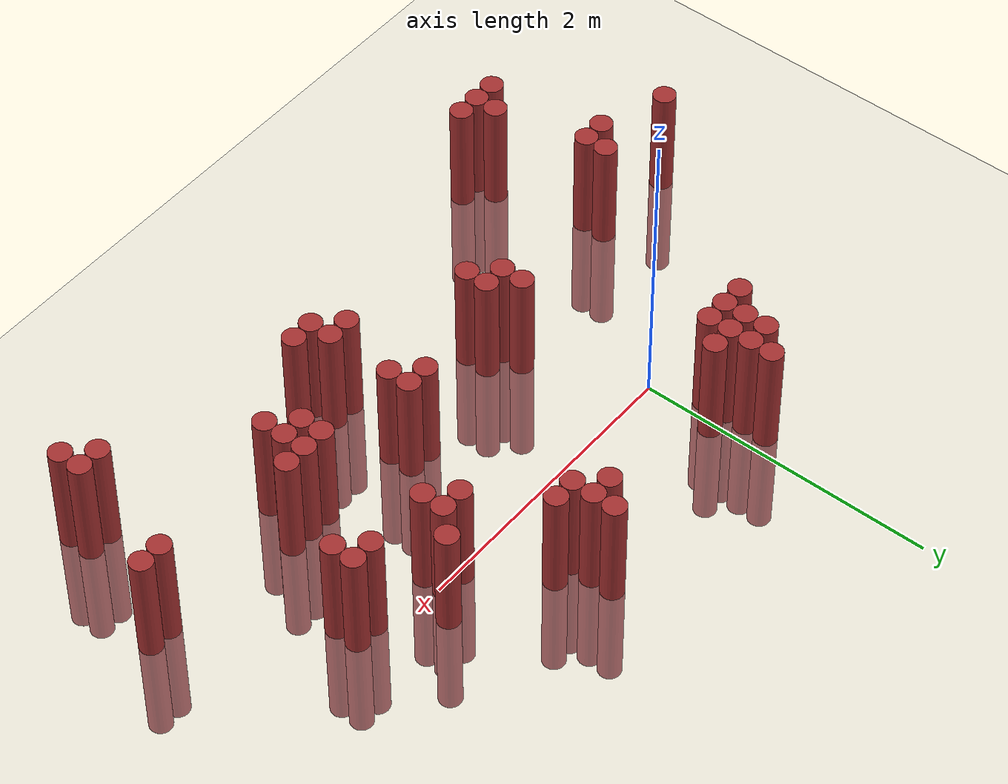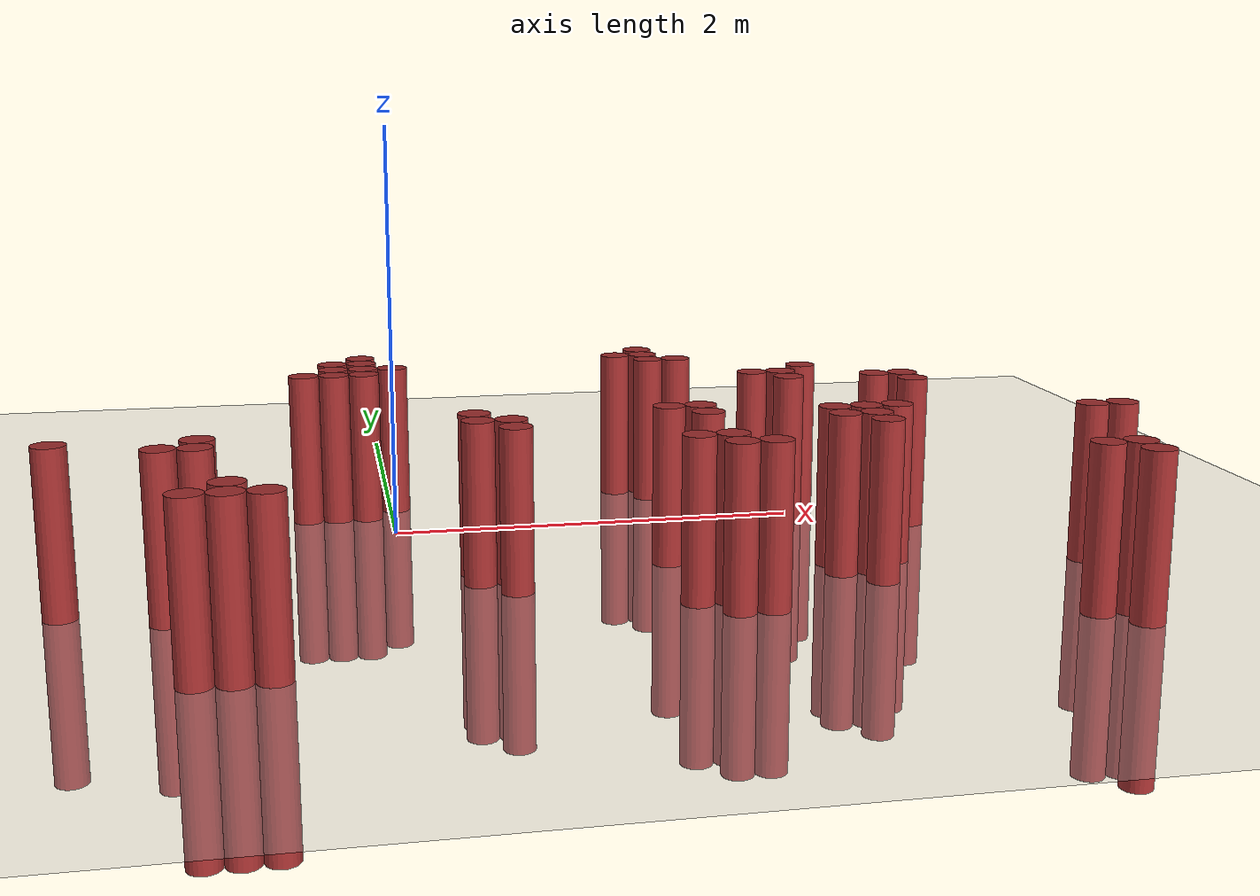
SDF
<sdf version="1.6">
 <world name="default">
  <model name="ground_plane">
   <static>1</static>
   <link name="link">
    <collision name="collision">
     <geometry><plane><normal>0 0 1</normal><size>100 100</size></plane></geometry>
     <surface><friction><ode><mu>100</mu><mu2>50</mu2></ode></friction></surface>
    </collision>
    <visual name="visual">
     <cast_shadows>0</cast_shadows>
     <geometry><plane><normal>0 0 1</normal><size>100 100</size></plane></geometry>
     <material>
      <script><uri>file://media/materials/scripts/gazebo.material</uri><name>Gazebo/Grey</name></script>
     </material>
    </visual>
   </link>
  </model>
  <model name="unit_cylinder_310">
   <static>1</static>
   <pose>-1.475000 -1.025000 0.000000 0.000000 0.000000 0.000000</pose>
   <link name="link">
    <inertial>
     <mass>1</mass>
     <inertia><ixx>0.145833</ixx><ixy>0</ixy><ixz>0</ixz><iyy>0.145833</iyy><iyz>0</iyz><izz>0.125</izz></inertia>
    </inertial>
    <collision name="collision">
     <geometry><cylinder><radius>0.075000</radius><length>1.5</length></cylinder></geometry>
    </collision>
    <visual name="visual">
     <geometry><cylinder><radius>0.075000</radius><length>1.5</length></cylinder></geometry>
     <material>
      <ambient>0.648000 0.192000 0.192000 1</ambient>
      <diffuse>0.648000 0.192000 0.192000 1</diffuse>
     </material>
     <material>
      <script><name>Gazebo/Grey</name><uri>file://media/materials/scripts/gazebo.material</uri></script>
     </material>
    </visual>
   </link>
  </model>
  <model name="unit_cylinder_322">
   <static>1</static>
   <pose>-1.025000 -1.175000 0.000000 0.000000 0.000000 0.000000</pose>
   <link name="link">
    <inertial>
     <mass>1</mass>
     <inertia><ixx>0.145833</ixx><ixy>0</ixy><ixz>0</ixz><iyy>0.145833</iyy><iyz>0</iyz><izz>0.125</izz></inertia>
    </inertial>
    <collision name="collision">
     <geometry><cylinder><radius>0.075000</radius><length>1.5</length></cylinder></geometry>
    </collision>
    <visual name="visual">
     <geometry><cylinder><radius>0.075000</radius><length>1.5</length></cylinder></geometry>
     <material>
      <ambient>0.648000 0.192000 0.192000 1</ambient>
      <diffuse>0.648000 0.192000 0.192000 1</diffuse>
     </material>
     <material>
      <script><name>Gazebo/Grey</name><uri>file://media/materials/scripts/gazebo.material</uri></script>
     </material>
    </visual>
   </link>
  </model>
  <model name="unit_cylinder_325">
   <static>1</static>
   <pose>-0.875000 -1.925000 0.000000 0.000000 0.000000 0.000000</pose>
   <link name="link">
    <inertial>
     <mass>1</mass>
     <inertia><ixx>0.145833</ixx><ixy>0</ixy><ixz>0</ixz><iyy>0.145833</iyy><iyz>0</iyz><izz>0.125</izz></inertia>
    </inertial>
    <collision name="collision">
     <geometry><cylinder><radius>0.075000</radius><length>1.5</length></cylinder></geometry>
    </collision>
    <visual name="visual">
     <geometry><cylinder><radius>0.075000</radius><length>1.5</length></cylinder></geometry>
     <material>
      <ambient>0.648000 0.192000 0.192000 1</ambient>
      <diffuse>0.648000 0.192000 0.192000 1</diffuse>
     </material>
     <material>
      <script><name>Gazebo/Grey</name><uri>file://media/materials/scripts/gazebo.material</uri></script>
     </material>
    </visual>
   </link>
  </model>
  <model name="unit_cylinder_326">
   <static>1</static>
   <pose>-0.875000 -1.175000 0.000000 0.000000 0.000000 0.000000</pose>
   <link name="link">
    <inertial>
     <mass>1</mass>
     <inertia><ixx>0.145833</ixx><ixy>0</ixy><ixz>0</ixz><iyy>0.145833</iyy><iyz>0</iyz><izz>0.125</izz></inertia>
    </inertial>
    <collision name="collision">
     <geometry><cylinder><radius>0.075000</radius><length>1.5</length></cylinder></geometry>
    </collision>
    <visual name="visual">
     <geometry><cylinder><radius>0.075000</radius><length>1.5</length></cylinder></geometry>
     <material>
      <ambient>0.648000 0.192000 0.192000 1</ambient>
      <diffuse>0.648000 0.192000 0.192000 1</diffuse>
     </material>
     <material>
      <script><name>Gazebo/Grey</name><uri>file://media/materials/scripts/gazebo.material</uri></script>
     </material>
    </visual>
   </link>
  </model>
  <model name="unit_cylinder_327">
   <static>1</static>
   <pose>-0.875000 -1.025000 0.000000 0.000000 0.000000 0.000000</pose>
   <link name="link">
    <inertial>
     <mass>1</mass>
     <inertia><ixx>0.145833</ixx><ixy>0</ixy><ixz>0</ixz><iyy>0.145833</iyy><iyz>0</iyz><izz>0.125</izz></inertia>
    </inertial>
    <collision name="collision">
     <geometry><cylinder><radius>0.075000</radius><length>1.5</length></cylinder></geometry>
    </collision>
    <visual name="visual">
     <geometry><cylinder><radius>0.075000</radius><length>1.5</length></cylinder></geometry>
     <material>
      <ambient>0.648000 0.192000 0.192000 1</ambient>
      <diffuse>0.648000 0.192000 0.192000 1</diffuse>
     </material>
     <material>
      <script><name>Gazebo/Grey</name><uri>file://media/materials/scripts/gazebo.material</uri></script>
     </material>
    </visual>
   </link>
  </model>
  <model name="unit_cylinder_333">
   <static>1</static>
   <pose>-0.725000 -1.925000 0.000000 0.000000 0.000000 0.000000</pose>
   <link name="link">
    <inertial>
     <mass>1</mass>
     <inertia><ixx>0.145833</ixx><ixy>0</ixy><ixz>0</ixz><iyy>0.145833</iyy><iyz>0</iyz><izz>0.125</izz></inertia>
    </inertial>
    <collision name="collision">
     <geometry><cylinder><radius>0.075000</radius><length>1.5</length></cylinder></geometry>
    </collision>
    <visual name="visual">
     <geometry><cylinder><radius>0.075000</radius><length>1.5</length></cylinder></geometry>
     <material>
      <ambient>0.648000 0.192000 0.192000 1</ambient>
      <diffuse>0.648000 0.192000 0.192000 1</diffuse>
     </material>
     <material>
      <script><name>Gazebo/Grey</name><uri>file://media/materials/scripts/gazebo.material</uri></script>
     </material>
    </visual>
   </link>
  </model>
  <model name="unit_cylinder_334">
   <static>1</static>
   <pose>-0.725000 -1.775000 0.000000 0.000000 0.000000 0.000000</pose>
   <link name="link">
    <inertial>
     <mass>1</mass>
     <inertia><ixx>0.145833</ixx><ixy>0</ixy><ixz>0</ixz><iyy>0.145833</iyy><iyz>0</iyz><izz>0.125</izz></inertia>
    </inertial>
    <collision name="collision">
     <geometry><cylinder><radius>0.075000</radius><length>1.5</length></cylinder></geometry>
    </collision>
    <visual name="visual">
     <geometry><cylinder><radius>0.075000</radius><length>1.5</length></cylinder></geometry>
     <material>
      <ambient>0.648000 0.192000 0.192000 1</ambient>
      <diffuse>0.648000 0.192000 0.192000 1</diffuse>
     </material>
     <material>
      <script><name>Gazebo/Grey</name><uri>file://media/materials/scripts/gazebo.material</uri></script>
     </material>
    </visual>
   </link>
  </model>
  <model name="unit_cylinder_338">
   <static>1</static>
   <pose>-0.575000 -1.925000 0.000000 0.000000 0.000000 0.000000</pose>
   <link name="link">
    <inertial>
     <mass>1</mass>
     <inertia><ixx>0.145833</ixx><ixy>0</ixy><ixz>0</ixz><iyy>0.145833</iyy><iyz>0</iyz><izz>0.125</izz></inertia>
    </inertial>
    <collision name="collision">
     <geometry><cylinder><radius>0.075000</radius><length>1.5</length></cylinder></geometry>
    </collision>
    <visual name="visual">
     <geometry><cylinder><radius>0.075000</radius><length>1.5</length></cylinder></geometry>
     <material>
      <ambient>0.648000 0.192000 0.192000 1</ambient>
      <diffuse>0.648000 0.192000 0.192000 1</diffuse>
     </material>
     <material>
      <script><name>Gazebo/Grey</name><uri>file://media/materials/scripts/gazebo.material</uri></script>
     </material>
    </visual>
   </link>
  </model>
  <model name="unit_cylinder_340">
   <static>1</static>
   <pose>-0.425000 0.325000 0.000000 0.000000 0.000000 0.000000</pose>
   <link name="link">
    <inertial>
     <mass>1</mass>
     <inertia><ixx>0.145833</ixx><ixy>0</ixy><ixz>0</ixz><iyy>0.145833</iyy><iyz>0</iyz><izz>0.125</izz></inertia>
    </inertial>
    <collision name="collision">
     <geometry><cylinder><radius>0.075000</radius><length>1.5</length></cylinder></geometry>
    </collision>
    <visual name="visual">
     <geometry><cylinder><radius>0.075000</radius><length>1.5</length></cylinder></geometry>
     <material>
      <ambient>0.648000 0.192000 0.192000 1</ambient>
      <diffuse>0.648000 0.192000 0.192000 1</diffuse>
     </material>
     <material>
      <script><name>Gazebo/Grey</name><uri>file://media/materials/scripts/gazebo.material</uri></script>
     </material>
    </visual>
   </link>
  </model>
  <model name="unit_cylinder_341">
   <static>1</static>
   <pose>-0.275000 0.325000 0.000000 0.000000 0.000000 0.000000</pose>
   <link name="link">
    <inertial>
     <mass>1</mass>
     <inertia><ixx>0.145833</ixx><ixy>0</ixy><ixz>0</ixz><iyy>0.145833</iyy><iyz>0</iyz><izz>0.125</izz></inertia>
    </inertial>
    <collision name="collision">
     <geometry><cylinder><radius>0.075000</radius><length>1.5</length></cylinder></geometry>
    </collision>
    <visual name="visual">
     <geometry><cylinder><radius>0.075000</radius><length>1.5</length></cylinder></geometry>
     <material>
      <ambient>0.648000 0.192000 0.192000 1</ambient>
      <diffuse>0.648000 0.192000 0.192000 1</diffuse>
     </material>
     <material>
      <script><name>Gazebo/Grey</name><uri>file://media/materials/scripts/gazebo.material</uri></script>
     </material>
    </visual>
   </link>
  </model>
  <model name="unit_cylinder_342">
   <static>1</static>
   <pose>-0.275000 0.475000 0.000000 0.000000 0.000000 0.000000</pose>
   <link name="link">
    <inertial>
     <mass>1</mass>
     <inertia><ixx>0.145833</ixx><ixy>0</ixy><ixz>0</ixz><iyy>0.145833</iyy><iyz>0</iyz><izz>0.125</izz></inertia>
    </inertial>
    <collision name="collision">
     <geometry><cylinder><radius>0.075000</radius><length>1.5</length></cylinder></geometry>
    </collision>
    <visual name="visual">
     <geometry><cylinder><radius>0.075000</radius><length>1.5</length></cylinder></geometry>
     <material>
      <ambient>0.648000 0.192000 0.192000 1</ambient>
      <diffuse>0.648000 0.192000 0.192000 1</diffuse>
     </material>
     <material>
      <script><name>Gazebo/Grey</name><uri>file://media/materials/scripts/gazebo.material</uri></script>
     </material>
    </visual>
   </link>
  </model>
  <model name="unit_cylinder_343">
   <static>1</static>
   <pose>-0.275000 0.625000 0.000000 0.000000 0.000000 0.000000</pose>
   <link name="link">
    <inertial>
     <mass>1</mass>
     <inertia><ixx>0.145833</ixx><ixy>0</ixy><ixz>0</ixz><iyy>0.145833</iyy><iyz>0</iyz><izz>0.125</izz></inertia>
    </inertial>
    <collision name="collision">
     <geometry><cylinder><radius>0.075000</radius><length>1.5</length></cylinder></geometry>
    </collision>
    <visual name="visual">
     <geometry><cylinder><radius>0.075000</radius><length>1.5</length></cylinder></geometry>
     <material>
      <ambient>0.648000 0.192000 0.192000 1</ambient>
      <diffuse>0.648000 0.192000 0.192000 1</diffuse>
     </material>
     <material>
      <script><name>Gazebo/Grey</name><uri>file://media/materials/scripts/gazebo.material</uri></script>
     </material>
    </visual>
   </link>
  </model>
  <model name="unit_cylinder_344">
   <static>1</static>
   <pose>-0.125000 0.325000 0.000000 0.000000 0.000000 0.000000</pose>
   <link name="link">
    <inertial>
     <mass>1</mass>
     <inertia><ixx>0.145833</ixx><ixy>0</ixy><ixz>0</ixz><iyy>0.145833</iyy><iyz>0</iyz><izz>0.125</izz></inertia>
    </inertial>
    <collision name="collision">
     <geometry><cylinder><radius>0.075000</radius><length>1.5</length></cylinder></geometry>
    </collision>
    <visual name="visual">
     <geometry><cylinder><radius>0.075000</radius><length>1.5</length></cylinder></geometry>
     <material>
      <ambient>0.648000 0.192000 0.192000 1</ambient>
      <diffuse>0.648000 0.192000 0.192000 1</diffuse>
     </material>
     <material>
      <script><name>Gazebo/Grey</name><uri>file://media/materials/scripts/gazebo.material</uri></script>
     </material>
    </visual>
   </link>
  </model>
  <model name="unit_cylinder_345">
   <static>1</static>
   <pose>-0.125000 0.475000 0.000000 0.000000 0.000000 0.000000</pose>
   <link name="link">
    <inertial>
     <mass>1</mass>
     <inertia><ixx>0.145833</ixx><ixy>0</ixy><ixz>0</ixz><iyy>0.145833</iyy><iyz>0</iyz><izz>0.125</izz></inertia>
    </inertial>
    <collision name="collision">
     <geometry><cylinder><radius>0.075000</radius><length>1.5</length></cylinder></geometry>
    </collision>
    <visual name="visual">
     <geometry><cylinder><radius>0.075000</radius><length>1.5</length></cylinder></geometry>
     <material>
      <ambient>0.648000 0.192000 0.192000 1</ambient>
      <diffuse>0.648000 0.192000 0.192000 1</diffuse>
     </material>
     <material>
      <script><name>Gazebo/Grey</name><uri>file://media/materials/scripts/gazebo.material</uri></script>
     </material>
    </visual>
   </link>
  </model>
  <model name="unit_cylinder_346">
   <static>1</static>
   <pose>-0.125000 0.625000 0.000000 0.000000 0.000000 0.000000</pose>
   <link name="link">
    <inertial>
     <mass>1</mass>
     <inertia><ixx>0.145833</ixx><ixy>0</ixy><ixz>0</ixz><iyy>0.145833</iyy><iyz>0</iyz><izz>0.125</izz></inertia>
    </inertial>
    <collision name="collision">
     <geometry><cylinder><radius>0.075000</radius><length>1.5</length></cylinder></geometry>
    </collision>
    <visual name="visual">
     <geometry><cylinder><radius>0.075000</radius><length>1.5</length></cylinder></geometry>
     <material>
      <ambient>0.648000 0.192000 0.192000 1</ambient>
      <diffuse>0.648000 0.192000 0.192000 1</diffuse>
     </material>
     <material>
      <script><name>Gazebo/Grey</name><uri>file://media/materials/scripts/gazebo.material</uri></script>
     </material>
    </visual>
   </link>
  </model>
  <model name="unit_cylinder_347">
   <static>1</static>
   <pose>-0.125000 0.775000 0.000000 0.000000 0.000000 0.000000</pose>
   <link name="link">
    <inertial>
     <mass>1</mass>
     <inertia><ixx>0.145833</ixx><ixy>0</ixy><ixz>0</ixz><iyy>0.145833</iyy><iyz>0</iyz><izz>0.125</izz></inertia>
    </inertial>
    <collision name="collision">
     <geometry><cylinder><radius>0.075000</radius><length>1.5</length></cylinder></geometry>
    </collision>
    <visual name="visual">
     <geometry><cylinder><radius>0.075000</radius><length>1.5</length></cylinder></geometry>
     <material>
      <ambient>0.648000 0.192000 0.192000 1</ambient>
      <diffuse>0.648000 0.192000 0.192000 1</diffuse>
     </material>
     <material>
      <script><name>Gazebo/Grey</name><uri>file://media/materials/scripts/gazebo.material</uri></script>
     </material>
    </visual>
   </link>
  </model>
  <model name="unit_cylinder_350">
   <static>1</static>
   <pose>0.025000 0.475000 0.000000 0.000000 0.000000 0.000000</pose>
   <link name="link">
    <inertial>
     <mass>1</mass>
     <inertia><ixx>0.145833</ixx><ixy>0</ixy><ixz>0</ixz><iyy>0.145833</iyy><iyz>0</iyz><izz>0.125</izz></inertia>
    </inertial>
    <collision name="collision">
     <geometry><cylinder><radius>0.075000</radius><length>1.5</length></cylinder></geometry>
    </collision>
    <visual name="visual">
     <geometry><cylinder><radius>0.075000</radius><length>1.5</length></cylinder></geometry>
     <material>
      <ambient>0.648000 0.192000 0.192000 1</ambient>
      <diffuse>0.648000 0.192000 0.192000 1</diffuse>
     </material>
     <material>
      <script><name>Gazebo/Grey</name><uri>file://media/materials/scripts/gazebo.material</uri></script>
     </material>
    </visual>
   </link>
  </model>
  <model name="unit_cylinder_356">
   <static>1</static>
   <pose>0.325000 -0.875000 0.000000 0.000000 0.000000 0.000000</pose>
   <link name="link">
    <inertial>
     <mass>1</mass>
     <inertia><ixx>0.145833</ixx><ixy>0</ixy><ixz>0</ixz><iyy>0.145833</iyy><iyz>0</iyz><izz>0.125</izz></inertia>
    </inertial>
    <collision name="collision">
     <geometry><cylinder><radius>0.075000</radius><length>1.5</length></cylinder></geometry>
    </collision>
    <visual name="visual">
     <geometry><cylinder><radius>0.075000</radius><length>1.5</length></cylinder></geometry>
     <material>
      <ambient>0.648000 0.192000 0.192000 1</ambient>
      <diffuse>0.648000 0.192000 0.192000 1</diffuse>
     </material>
     <material>
      <script><name>Gazebo/Grey</name><uri>file://media/materials/scripts/gazebo.material</uri></script>
     </material>
    </visual>
   </link>
  </model>
  <model name="unit_cylinder_357">
   <static>1</static>
   <pose>0.325000 -0.725000 0.000000 0.000000 0.000000 0.000000</pose>
   <link name="link">
    <inertial>
     <mass>1</mass>
     <inertia><ixx>0.145833</ixx><ixy>0</ixy><ixz>0</ixz><iyy>0.145833</iyy><iyz>0</iyz><izz>0.125</izz></inertia>
    </inertial>
    <collision name="collision">
     <geometry><cylinder><radius>0.075000</radius><length>1.5</length></cylinder></geometry>
    </collision>
    <visual name="visual">
     <geometry><cylinder><radius>0.075000</radius><length>1.5</length></cylinder></geometry>
     <material>
      <ambient>0.648000 0.192000 0.192000 1</ambient>
      <diffuse>0.648000 0.192000 0.192000 1</diffuse>
     </material>
     <material>
      <script><name>Gazebo/Grey</name><uri>file://media/materials/scripts/gazebo.material</uri></script>
     </material>
    </visual>
   </link>
  </model>
  <model name="unit_cylinder_362">
   <static>1</static>
   <pose>0.475000 -1.025000 0.000000 0.000000 0.000000 0.000000</pose>
   <link name="link">
    <inertial>
     <mass>1</mass>
     <inertia><ixx>0.145833</ixx><ixy>0</ixy><ixz>0</ixz><iyy>0.145833</iyy><iyz>0</iyz><izz>0.125</izz></inertia>
    </inertial>
    <collision name="collision">
     <geometry><cylinder><radius>0.075000</radius><length>1.5</length></cylinder></geometry>
    </collision>
    <visual name="visual">
     <geometry><cylinder><radius>0.075000</radius><length>1.5</length></cylinder></geometry>
     <material>
      <ambient>0.648000 0.192000 0.192000 1</ambient>
      <diffuse>0.648000 0.192000 0.192000 1</diffuse>
     </material>
     <material>
      <script><name>Gazebo/Grey</name><uri>file://media/materials/scripts/gazebo.material</uri></script>
     </material>
    </visual>
   </link>
  </model>
  <model name="unit_cylinder_363">
   <static>1</static>
   <pose>0.475000 -0.875000 0.000000 0.000000 0.000000 0.000000</pose>
   <link name="link">
    <inertial>
     <mass>1</mass>
     <inertia><ixx>0.145833</ixx><ixy>0</ixy><ixz>0</ixz><iyy>0.145833</iyy><iyz>0</iyz><izz>0.125</izz></inertia>
    </inertial>
    <collision name="collision">
     <geometry><cylinder><radius>0.075000</radius><length>1.5</length></cylinder></geometry>
    </collision>
    <visual name="visual">
     <geometry><cylinder><radius>0.075000</radius><length>1.5</length></cylinder></geometry>
     <material>
      <ambient>0.648000 0.192000 0.192000 1</ambient>
      <diffuse>0.648000 0.192000 0.192000 1</diffuse>
     </material>
     <material>
      <script><name>Gazebo/Grey</name><uri>file://media/materials/scripts/gazebo.material</uri></script>
     </material>
    </visual>
   </link>
  </model>
  <model name="unit_cylinder_367">
   <static>1</static>
   <pose>1.225000 -1.325000 0.000000 0.000000 0.000000 0.000000</pose>
   <link name="link">
    <inertial>
     <mass>1</mass>
     <inertia><ixx>0.145833</ixx><ixy>0</ixy><ixz>0</ixz><iyy>0.145833</iyy><iyz>0</iyz><izz>0.125</izz></inertia>
    </inertial>
    <collision name="collision">
     <geometry><cylinder><radius>0.075000</radius><length>1.5</length></cylinder></geometry>
    </collision>
    <visual name="visual">
     <geometry><cylinder><radius>0.075000</radius><length>1.5</length></cylinder></geometry>
     <material>
      <ambient>0.648000 0.192000 0.192000 1</ambient>
      <diffuse>0.648000 0.192000 0.192000 1</diffuse>
     </material>
     <material>
      <script><name>Gazebo/Grey</name><uri>file://media/materials/scripts/gazebo.material</uri></script>
     </material>
    </visual>
   </link>
  </model>
  <model name="unit_cylinder_368">
   <static>1</static>
   <pose>1.225000 -0.725000 0.000000 0.000000 0.000000 0.000000</pose>
   <link name="link">
    <inertial>
     <mass>1</mass>
     <inertia><ixx>0.145833</ixx><ixy>0</ixy><ixz>0</ixz><iyy>0.145833</iyy><iyz>0</iyz><izz>0.125</izz></inertia>
    </inertial>
    <collision name="collision">
     <geometry><cylinder><radius>0.075000</radius><length>1.5</length></cylinder></geometry>
    </collision>
    <visual name="visual">
     <geometry><cylinder><radius>0.075000</radius><length>1.5</length></cylinder></geometry>
     <material>
      <ambient>0.648000 0.192000 0.192000 1</ambient>
      <diffuse>0.648000 0.192000 0.192000 1</diffuse>
     </material>
     <material>
      <script><name>Gazebo/Grey</name><uri>file://media/materials/scripts/gazebo.material</uri></script>
     </material>
    </visual>
   </link>
  </model>
  <model name="unit_cylinder_369">
   <static>1</static>
   <pose>1.225000 0.625000 0.000000 0.000000 0.000000 0.000000</pose>
   <link name="link">
    <inertial>
     <mass>1</mass>
     <inertia><ixx>0.145833</ixx><ixy>0</ixy><ixz>0</ixz><iyy>0.145833</iyy><iyz>0</iyz><izz>0.125</izz></inertia>
    </inertial>
    <collision name="collision">
     <geometry><cylinder><radius>0.075000</radius><length>1.5</length></cylinder></geometry>
    </collision>
    <visual name="visual">
     <geometry><cylinder><radius>0.075000</radius><length>1.5</length></cylinder></geometry>
     <material>
      <ambient>0.648000 0.192000 0.192000 1</ambient>
      <diffuse>0.648000 0.192000 0.192000 1</diffuse>
     </material>
     <material>
      <script><name>Gazebo/Grey</name><uri>file://media/materials/scripts/gazebo.material</uri></script>
     </material>
    </visual>
   </link>
  </model>
  <model name="unit_cylinder_370">
   <static>1</static>
   <pose>1.375000 -1.475000 0.000000 0.000000 0.000000 0.000000</pose>
   <link name="link">
    <inertial>
     <mass>1</mass>
     <inertia><ixx>0.145833</ixx><ixy>0</ixy><ixz>0</ixz><iyy>0.145833</iyy><iyz>0</iyz><izz>0.125</izz></inertia>
    </inertial>
    <collision name="collision">
     <geometry><cylinder><radius>0.075000</radius><length>1.5</length></cylinder></geometry>
    </collision>
    <visual name="visual">
     <geometry><cylinder><radius>0.075000</radius><length>1.5</length></cylinder></geometry>
     <material>
      <ambient>0.648000 0.192000 0.192000 1</ambient>
      <diffuse>0.648000 0.192000 0.192000 1</diffuse>
     </material>
     <material>
      <script><name>Gazebo/Grey</name><uri>file://media/materials/scripts/gazebo.material</uri></script>
     </material>
    </visual>
   </link>
  </model>
  <model name="unit_cylinder_371">
   <static>1</static>
   <pose>1.375000 -1.325000 0.000000 0.000000 0.000000 0.000000</pose>
   <link name="link">
    <inertial>
     <mass>1</mass>
     <inertia><ixx>0.145833</ixx><ixy>0</ixy><ixz>0</ixz><iyy>0.145833</iyy><iyz>0</iyz><izz>0.125</izz></inertia>
    </inertial>
    <collision name="collision">
     <geometry><cylinder><radius>0.075000</radius><length>1.5</length></cylinder></geometry>
    </collision>
    <visual name="visual">
     <geometry><cylinder><radius>0.075000</radius><length>1.5</length></cylinder></geometry>
     <material>
      <ambient>0.648000 0.192000 0.192000 1</ambient>
      <diffuse>0.648000 0.192000 0.192000 1</diffuse>
     </material>
     <material>
      <script><name>Gazebo/Grey</name><uri>file://media/materials/scripts/gazebo.material</uri></script>
     </material>
    </visual>
   </link>
  </model>
  <model name="unit_cylinder_372">
   <static>1</static>
   <pose>1.375000 -0.875000 0.000000 0.000000 0.000000 0.000000</pose>
   <link name="link">
    <inertial>
     <mass>1</mass>
     <inertia><ixx>0.145833</ixx><ixy>0</ixy><ixz>0</ixz><iyy>0.145833</iyy><iyz>0</iyz><izz>0.125</izz></inertia>
    </inertial>
    <collision name="collision">
     <geometry><cylinder><radius>0.075000</radius><length>1.5</length></cylinder></geometry>
    </collision>
    <visual name="visual">
     <geometry><cylinder><radius>0.075000</radius><length>1.5</length></cylinder></geometry>
     <material>
      <ambient>0.648000 0.192000 0.192000 1</ambient>
      <diffuse>0.648000 0.192000 0.192000 1</diffuse>
     </material>
     <material>
      <script><name>Gazebo/Grey</name><uri>file://media/materials/scripts/gazebo.material</uri></script>
     </material>
    </visual>
   </link>
  </model>
  <model name="unit_cylinder_373">
   <static>1</static>
   <pose>1.375000 -0.725000 0.000000 0.000000 0.000000 0.000000</pose>
   <link name="link">
    <inertial>
     <mass>1</mass>
     <inertia><ixx>0.145833</ixx><ixy>0</ixy><ixz>0</ixz><iyy>0.145833</iyy><iyz>0</iyz><izz>0.125</izz></inertia>
    </inertial>
    <collision name="collision">
     <geometry><cylinder><radius>0.075000</radius><length>1.5</length></cylinder></geometry>
    </collision>
    <visual name="visual">
     <geometry><cylinder><radius>0.075000</radius><length>1.5</length></cylinder></geometry>
     <material>
      <ambient>0.648000 0.192000 0.192000 1</ambient>
      <diffuse>0.648000 0.192000 0.192000 1</diffuse>
     </material>
     <material>
      <script><name>Gazebo/Grey</name><uri>file://media/materials/scripts/gazebo.material</uri></script>
     </material>
    </visual>
   </link>
  </model>
  <model name="unit_cylinder_374">
   <static>1</static>
   <pose>1.375000 0.475000 0.000000 0.000000 0.000000 0.000000</pose>
   <link name="link">
    <inertial>
     <mass>1</mass>
     <inertia><ixx>0.145833</ixx><ixy>0</ixy><ixz>0</ixz><iyy>0.145833</iyy><iyz>0</iyz><izz>0.125</izz></inertia>
    </inertial>
    <collision name="collision">
     <geometry><cylinder><radius>0.075000</radius><length>1.5</length></cylinder></geometry>
    </collision>
    <visual name="visual">
     <geometry><cylinder><radius>0.075000</radius><length>1.5</length></cylinder></geometry>
     <material>
      <ambient>0.648000 0.192000 0.192000 1</ambient>
      <diffuse>0.648000 0.192000 0.192000 1</diffuse>
     </material>
     <material>
      <script><name>Gazebo/Grey</name><uri>file://media/materials/scripts/gazebo.material</uri></script>
     </material>
    </visual>
   </link>
  </model>
  <model name="unit_cylinder_375">
   <static>1</static>
   <pose>1.375000 0.625000 0.000000 0.000000 0.000000 0.000000</pose>
   <link name="link">
    <inertial>
     <mass>1</mass>
     <inertia><ixx>0.145833</ixx><ixy>0</ixy><ixz>0</ixz><iyy>0.145833</iyy><iyz>0</iyz><izz>0.125</izz></inertia>
    </inertial>
    <collision name="collision">
     <geometry><cylinder><radius>0.075000</radius><length>1.5</length></cylinder></geometry>
    </collision>
    <visual name="visual">
     <geometry><cylinder><radius>0.075000</radius><length>1.5</length></cylinder></geometry>
     <material>
      <ambient>0.648000 0.192000 0.192000 1</ambient>
      <diffuse>0.648000 0.192000 0.192000 1</diffuse>
     </material>
     <material>
      <script><name>Gazebo/Grey</name><uri>file://media/materials/scripts/gazebo.material</uri></script>
     </material>
    </visual>
   </link>
  </model>
  <model name="unit_cylinder_376">
   <static>1</static>
   <pose>1.375000 0.775000 0.000000 0.000000 0.000000 0.000000</pose>
   <link name="link">
    <inertial>
     <mass>1</mass>
     <inertia><ixx>0.145833</ixx><ixy>0</ixy><ixz>0</ixz><iyy>0.145833</iyy><iyz>0</iyz><izz>0.125</izz></inertia>
    </inertial>
    <collision name="collision">
     <geometry><cylinder><radius>0.075000</radius><length>1.5</length></cylinder></geometry>
    </collision>
    <visual name="visual">
     <geometry><cylinder><radius>0.075000</radius><length>1.5</length></cylinder></geometry>
     <material>
      <ambient>0.648000 0.192000 0.192000 1</ambient>
      <diffuse>0.648000 0.192000 0.192000 1</diffuse>
     </material>
     <material>
      <script><name>Gazebo/Grey</name><uri>file://media/materials/scripts/gazebo.material</uri></script>
     </material>
    </visual>
   </link>
  </model>
  <model name="unit_cylinder_380">
   <static>1</static>
   <pose>1.525000 -1.475000 0.000000 0.000000 0.000000 0.000000</pose>
   <link name="link">
    <inertial>
     <mass>1</mass>
     <inertia><ixx>0.145833</ixx><ixy>0</ixy><ixz>0</ixz><iyy>0.145833</iyy><iyz>0</iyz><izz>0.125</izz></inertia>
    </inertial>
    <collision name="collision">
     <geometry><cylinder><radius>0.075000</radius><length>1.5</length></cylinder></geometry>
    </collision>
    <visual name="visual">
     <geometry><cylinder><radius>0.075000</radius><length>1.5</length></cylinder></geometry>
     <material>
      <ambient>0.648000 0.192000 0.192000 1</ambient>
      <diffuse>0.648000 0.192000 0.192000 1</diffuse>
     </material>
     <material>
      <script><name>Gazebo/Grey</name><uri>file://media/materials/scripts/gazebo.material</uri></script>
     </material>
    </visual>
   </link>
  </model>
  <model name="unit_cylinder_381">
   <static>1</static>
   <pose>1.525000 0.475000 0.000000 0.000000 0.000000 0.000000</pose>
   <link name="link">
    <inertial>
     <mass>1</mass>
     <inertia><ixx>0.145833</ixx><ixy>0</ixy><ixz>0</ixz><iyy>0.145833</iyy><iyz>0</iyz><izz>0.125</izz></inertia>
    </inertial>
    <collision name="collision">
     <geometry><cylinder><radius>0.075000</radius><length>1.5</length></cylinder></geometry>
    </collision>
    <visual name="visual">
     <geometry><cylinder><radius>0.075000</radius><length>1.5</length></cylinder></geometry>
     <material>
      <ambient>0.648000 0.192000 0.192000 1</ambient>
      <diffuse>0.648000 0.192000 0.192000 1</diffuse>
     </material>
     <material>
      <script><name>Gazebo/Grey</name><uri>file://media/materials/scripts/gazebo.material</uri></script>
     </material>
    </visual>
   </link>
  </model>
  <model name="unit_cylinder_396">
   <static>1</static>
   <pose>1.825000 0.025000 0.000000 0.000000 0.000000 0.000000</pose>
   <link name="link">
    <inertial>
     <mass>1</mass>
     <inertia><ixx>0.145833</ixx><ixy>0</ixy><ixz>0</ixz><iyy>0.145833</iyy><iyz>0</iyz><izz>0.125</izz></inertia>
    </inertial>
    <collision name="collision">
     <geometry><cylinder><radius>0.075000</radius><length>1.5</length></cylinder></geometry>
    </collision>
    <visual name="visual">
     <geometry><cylinder><radius>0.075000</radius><length>1.5</length></cylinder></geometry>
     <material>
      <ambient>0.648000 0.192000 0.192000 1</ambient>
      <diffuse>0.648000 0.192000 0.192000 1</diffuse>
     </material>
     <material>
      <script><name>Gazebo/Grey</name><uri>file://media/materials/scripts/gazebo.material</uri></script>
     </material>
    </visual>
   </link>
  </model>
  <model name="unit_cylinder_404">
   <static>1</static>
   <pose>1.975000 -1.025000 0.000000 0.000000 0.000000 0.000000</pose>
   <link name="link">
    <inertial>
     <mass>1</mass>
     <inertia><ixx>0.145833</ixx><ixy>0</ixy><ixz>0</ixz><iyy>0.145833</iyy><iyz>0</iyz><izz>0.125</izz></inertia>
    </inertial>
    <collision name="collision">
     <geometry><cylinder><radius>0.075000</radius><length>1.5</length></cylinder></geometry>
    </collision>
    <visual name="visual">
     <geometry><cylinder><radius>0.075000</radius><length>1.5</length></cylinder></geometry>
     <material>
      <ambient>0.648000 0.192000 0.192000 1</ambient>
      <diffuse>0.648000 0.192000 0.192000 1</diffuse>
     </material>
     <material>
      <script><name>Gazebo/Grey</name><uri>file://media/materials/scripts/gazebo.material</uri></script>
     </material>
    </visual>
   </link>
  </model>
  <model name="unit_cylinder_405">
   <static>1</static>
   <pose>1.975000 -0.875000 0.000000 0.000000 0.000000 0.000000</pose>
   <link name="link">
    <inertial>
     <mass>1</mass>
     <inertia><ixx>0.145833</ixx><ixy>0</ixy><ixz>0</ixz><iyy>0.145833</iyy><iyz>0</iyz><izz>0.125</izz></inertia>
    </inertial>
    <collision name="collision">
     <geometry><cylinder><radius>0.075000</radius><length>1.5</length></cylinder></geometry>
    </collision>
    <visual name="visual">
     <geometry><cylinder><radius>0.075000</radius><length>1.5</length></cylinder></geometry>
     <material>
      <ambient>0.648000 0.192000 0.192000 1</ambient>
      <diffuse>0.648000 0.192000 0.192000 1</diffuse>
     </material>
     <material>
      <script><name>Gazebo/Grey</name><uri>file://media/materials/scripts/gazebo.material</uri></script>
     </material>
    </visual>
   </link>
  </model>
  <model name="unit_cylinder_406">
   <static>1</static>
   <pose>1.975000 -0.125000 0.000000 0.000000 0.000000 0.000000</pose>
   <link name="link">
    <inertial>
     <mass>1</mass>
     <inertia><ixx>0.145833</ixx><ixy>0</ixy><ixz>0</ixz><iyy>0.145833</iyy><iyz>0</iyz><izz>0.125</izz></inertia>
    </inertial>
    <collision name="collision">
     <geometry><cylinder><radius>0.075000</radius><length>1.5</length></cylinder></geometry>
    </collision>
    <visual name="visual">
     <geometry><cylinder><radius>0.075000</radius><length>1.5</length></cylinder></geometry>
     <material>
      <ambient>0.648000 0.192000 0.192000 1</ambient>
      <diffuse>0.648000 0.192000 0.192000 1</diffuse>
     </material>
     <material>
      <script><name>Gazebo/Grey</name><uri>file://media/materials/scripts/gazebo.material</uri></script>
     </material>
    </visual>
   </link>
  </model>
  <model name="unit_cylinder_407">
   <static>1</static>
   <pose>1.975000 0.025000 0.000000 0.000000 0.000000 0.000000</pose>
   <link name="link">
    <inertial>
     <mass>1</mass>
     <inertia><ixx>0.145833</ixx><ixy>0</ixy><ixz>0</ixz><iyy>0.145833</iyy><iyz>0</iyz><izz>0.125</izz></inertia>
    </inertial>
    <collision name="collision">
     <geometry><cylinder><radius>0.075000</radius><length>1.5</length></cylinder></geometry>
    </collision>
    <visual name="visual">
     <geometry><cylinder><radius>0.075000</radius><length>1.5</length></cylinder></geometry>
     <material>
      <ambient>0.648000 0.192000 0.192000 1</ambient>
      <diffuse>0.648000 0.192000 0.192000 1</diffuse>
     </material>
     <material>
      <script><name>Gazebo/Grey</name><uri>file://media/materials/scripts/gazebo.material</uri></script>
     </material>
    </visual>
   </link>
  </model>
  <model name="unit_cylinder_412">
   <static>1</static>
   <pose>2.125000 -1.175000 0.000000 0.000000 0.000000 0.000000</pose>
   <link name="link">
    <inertial>
     <mass>1</mass>
     <inertia><ixx>0.145833</ixx><ixy>0</ixy><ixz>0</ixz><iyy>0.145833</iyy><iyz>0</iyz><izz>0.125</izz></inertia>
    </inertial>
    <collision name="collision">
     <geometry><cylinder><radius>0.075000</radius><length>1.5</length></cylinder></geometry>
    </collision>
    <visual name="visual">
     <geometry><cylinder><radius>0.075000</radius><length>1.5</length></cylinder></geometry>
     <material>
      <ambient>0.648000 0.192000 0.192000 1</ambient>
      <diffuse>0.648000 0.192000 0.192000 1</diffuse>
     </material>
     <material>
      <script><name>Gazebo/Grey</name><uri>file://media/materials/scripts/gazebo.material</uri></script>
     </material>
    </visual>
   </link>
  </model>
  <model name="unit_cylinder_413">
   <static>1</static>
   <pose>2.125000 -1.025000 0.000000 0.000000 0.000000 0.000000</pose>
   <link name="link">
    <inertial>
     <mass>1</mass>
     <inertia><ixx>0.145833</ixx><ixy>0</ixy><ixz>0</ixz><iyy>0.145833</iyy><iyz>0</iyz><izz>0.125</izz></inertia>
    </inertial>
    <collision name="collision">
     <geometry><cylinder><radius>0.075000</radius><length>1.5</length></cylinder></geometry>
    </collision>
    <visual name="visual">
     <geometry><cylinder><radius>0.075000</radius><length>1.5</length></cylinder></geometry>
     <material>
      <ambient>0.648000 0.192000 0.192000 1</ambient>
      <diffuse>0.648000 0.192000 0.192000 1</diffuse>
     </material>
     <material>
      <script><name>Gazebo/Grey</name><uri>file://media/materials/scripts/gazebo.material</uri></script>
     </material>
    </visual>
   </link>
  </model>
  <model name="unit_cylinder_414">
   <static>1</static>
   <pose>2.125000 -0.875000 0.000000 0.000000 0.000000 0.000000</pose>
   <link name="link">
    <inertial>
     <mass>1</mass>
     <inertia><ixx>0.145833</ixx><ixy>0</ixy><ixz>0</ixz><iyy>0.145833</iyy><iyz>0</iyz><izz>0.125</izz></inertia>
    </inertial>
    <collision name="collision">
     <geometry><cylinder><radius>0.075000</radius><length>1.5</length></cylinder></geometry>
    </collision>
    <visual name="visual">
     <geometry><cylinder><radius>0.075000</radius><length>1.5</length></cylinder></geometry>
     <material>
      <ambient>0.648000 0.192000 0.192000 1</ambient>
      <diffuse>0.648000 0.192000 0.192000 1</diffuse>
     </material>
     <material>
      <script><name>Gazebo/Grey</name><uri>file://media/materials/scripts/gazebo.material</uri></script>
     </material>
    </visual>
   </link>
  </model>
  <model name="unit_cylinder_415">
   <static>1</static>
   <pose>2.125000 0.175000 0.000000 0.000000 0.000000 0.000000</pose>
   <link name="link">
    <inertial>
     <mass>1</mass>
     <inertia><ixx>0.145833</ixx><ixy>0</ixy><ixz>0</ixz><iyy>0.145833</iyy><iyz>0</iyz><izz>0.125</izz></inertia>
    </inertial>
    <collision name="collision">
     <geometry><cylinder><radius>0.075000</radius><length>1.5</length></cylinder></geometry>
    </collision>
    <visual name="visual">
     <geometry><cylinder><radius>0.075000</radius><length>1.5</length></cylinder></geometry>
     <material>
      <ambient>0.648000 0.192000 0.192000 1</ambient>
      <diffuse>0.648000 0.192000 0.192000 1</diffuse>
     </material>
     <material>
      <script><name>Gazebo/Grey</name><uri>file://media/materials/scripts/gazebo.material</uri></script>
     </material>
    </visual>
   </link>
  </model>
  <model name="unit_cylinder_419">
   <static>1</static>
   <pose>2.275000 -0.875000 0.000000 0.000000 0.000000 0.000000</pose>
   <link name="link">
    <inertial>
     <mass>1</mass>
     <inertia><ixx>0.145833</ixx><ixy>0</ixy><ixz>0</ixz><iyy>0.145833</iyy><iyz>0</iyz><izz>0.125</izz></inertia>
    </inertial>
    <collision name="collision">
     <geometry><cylinder><radius>0.075000</radius><length>1.5</length></cylinder></geometry>
    </collision>
    <visual name="visual">
     <geometry><cylinder><radius>0.075000</radius><length>1.5</length></cylinder></geometry>
     <material>
      <ambient>0.648000 0.192000 0.192000 1</ambient>
      <diffuse>0.648000 0.192000 0.192000 1</diffuse>
     </material>
     <material>
      <script><name>Gazebo/Grey</name><uri>file://media/materials/scripts/gazebo.material</uri></script>
     </material>
    </visual>
   </link>
  </model>
  <model name="unit_cylinder_422">
   <static>1</static>
   <pose>2.425000 -0.125000 0.000000 0.000000 0.000000 0.000000</pose>
   <link name="link">
    <inertial>
     <mass>1</mass>
     <inertia><ixx>0.145833</ixx><ixy>0</ixy><ixz>0</ixz><iyy>0.145833</iyy><iyz>0</iyz><izz>0.125</izz></inertia>
    </inertial>
    <collision name="collision">
     <geometry><cylinder><radius>0.075000</radius><length>1.5</length></cylinder></geometry>
    </collision>
    <visual name="visual">
     <geometry><cylinder><radius>0.075000</radius><length>1.5</length></cylinder></geometry>
     <material>
      <ambient>0.648000 0.192000 0.192000 1</ambient>
      <diffuse>0.648000 0.192000 0.192000 1</diffuse>
     </material>
     <material>
      <script><name>Gazebo/Grey</name><uri>file://media/materials/scripts/gazebo.material</uri></script>
     </material>
    </visual>
   </link>
  </model>
  <model name="unit_cylinder_423">
   <static>1</static>
   <pose>2.575000 -0.275000 0.000000 0.000000 0.000000 0.000000</pose>
   <link name="link">
    <inertial>
     <mass>1</mass>
     <inertia><ixx>0.145833</ixx><ixy>0</ixy><ixz>0</ixz><iyy>0.145833</iyy><iyz>0</iyz><izz>0.125</izz></inertia>
    </inertial>
    <collision name="collision">
     <geometry><cylinder><radius>0.075000</radius><length>1.5</length></cylinder></geometry>
    </collision>
    <visual name="visual">
     <geometry><cylinder><radius>0.075000</radius><length>1.5</length></cylinder></geometry>
     <material>
      <ambient>0.648000 0.192000 0.192000 1</ambient>
      <diffuse>0.648000 0.192000 0.192000 1</diffuse>
     </material>
     <material>
      <script><name>Gazebo/Grey</name><uri>file://media/materials/scripts/gazebo.material</uri></script>
     </material>
    </visual>
   </link>
  </model>
  <model name="unit_cylinder_424">
   <static>1</static>
   <pose>2.575000 -0.125000 0.000000 0.000000 0.000000 0.000000</pose>
   <link name="link">
    <inertial>
     <mass>1</mass>
     <inertia><ixx>0.145833</ixx><ixy>0</ixy><ixz>0</ixz><iyy>0.145833</iyy><iyz>0</iyz><izz>0.125</izz></inertia>
    </inertial>
    <collision name="collision">
     <geometry><cylinder><radius>0.075000</radius><length>1.5</length></cylinder></geometry>
    </collision>
    <visual name="visual">
     <geometry><cylinder><radius>0.075000</radius><length>1.5</length></cylinder></geometry>
     <material>
      <ambient>0.648000 0.192000 0.192000 1</ambient>
      <diffuse>0.648000 0.192000 0.192000 1</diffuse>
     </material>
     <material>
      <script><name>Gazebo/Grey</name><uri>file://media/materials/scripts/gazebo.material</uri></script>
     </material>
    </visual>
   </link>
  </model>
  <model name="unit_cylinder_428">
   <static>1</static>
   <pose>2.875000 -1.775000 0.000000 0.000000 0.000000 0.000000</pose>
   <link name="link">
    <inertial>
     <mass>1</mass>
     <inertia><ixx>0.145833</ixx><ixy>0</ixy><ixz>0</ixz><iyy>0.145833</iyy><iyz>0</iyz><izz>0.125</izz></inertia>
    </inertial>
    <collision name="collision">
     <geometry><cylinder><radius>0.075000</radius><length>1.5</length></cylinder></geometry>
    </collision>
    <visual name="visual">
     <geometry><cylinder><radius>0.075000</radius><length>1.5</length></cylinder></geometry>
     <material>
      <ambient>0.648000 0.192000 0.192000 1</ambient>
      <diffuse>0.648000 0.192000 0.192000 1</diffuse>
     </material>
     <material>
      <script><name>Gazebo/Grey</name><uri>file://media/materials/scripts/gazebo.material</uri></script>
     </material>
    </visual>
   </link>
  </model>
  <model name="unit_cylinder_434">
   <static>1</static>
   <pose>3.025000 -1.925000 0.000000 0.000000 0.000000 0.000000</pose>
   <link name="link">
    <inertial>
     <mass>1</mass>
     <inertia><ixx>0.145833</ixx><ixy>0</ixy><ixz>0</ixz><iyy>0.145833</iyy><iyz>0</iyz><izz>0.125</izz></inertia>
    </inertial>
    <collision name="collision">
     <geometry><cylinder><radius>0.075000</radius><length>1.5</length></cylinder></geometry>
    </collision>
    <visual name="visual">
     <geometry><cylinder><radius>0.075000</radius><length>1.5</length></cylinder></geometry>
     <material>
      <ambient>0.648000 0.192000 0.192000 1</ambient>
      <diffuse>0.648000 0.192000 0.192000 1</diffuse>
     </material>
     <material>
      <script><name>Gazebo/Grey</name><uri>file://media/materials/scripts/gazebo.material</uri></script>
     </material>
    </visual>
   </link>
  </model>
  <model name="unit_cylinder_435">
   <static>1</static>
   <pose>3.025000 -1.775000 0.000000 0.000000 0.000000 0.000000</pose>
   <link name="link">
    <inertial>
     <mass>1</mass>
     <inertia><ixx>0.145833</ixx><ixy>0</ixy><ixz>0</ixz><iyy>0.145833</iyy><iyz>0</iyz><izz>0.125</izz></inertia>
    </inertial>
    <collision name="collision">
     <geometry><cylinder><radius>0.075000</radius><length>1.5</length></cylinder></geometry>
    </collision>
    <visual name="visual">
     <geometry><cylinder><radius>0.075000</radius><length>1.5</length></cylinder></geometry>
     <material>
      <ambient>0.648000 0.192000 0.192000 1</ambient>
      <diffuse>0.648000 0.192000 0.192000 1</diffuse>
     </material>
     <material>
      <script><name>Gazebo/Grey</name><uri>file://media/materials/scripts/gazebo.material</uri></script>
     </material>
    </visual>
   </link>
  </model>
  <model name="unit_cylinder_437">
   <static>1</static>
   <pose>3.175000 -1.025000 0.000000 0.000000 0.000000 0.000000</pose>
   <link name="link">
    <inertial>
     <mass>1</mass>
     <inertia><ixx>0.145833</ixx><ixy>0</ixy><ixz>0</ixz><iyy>0.145833</iyy><iyz>0</iyz><izz>0.125</izz></inertia>
    </inertial>
    <collision name="collision">
     <geometry><cylinder><radius>0.075000</radius><length>1.5</length></cylinder></geometry>
    </collision>
    <visual name="visual">
     <geometry><cylinder><radius>0.075000</radius><length>1.5</length></cylinder></geometry>
     <material>
      <ambient>0.648000 0.192000 0.192000 1</ambient>
      <diffuse>0.648000 0.192000 0.192000 1</diffuse>
     </material>
     <material>
      <script><name>Gazebo/Grey</name><uri>file://media/materials/scripts/gazebo.material</uri></script>
     </material>
    </visual>
   </link>
  </model>
  <model name="unit_cylinder_438">
   <static>1</static>
   <pose>3.325000 -1.025000 0.000000 0.000000 0.000000 0.000000</pose>
   <link name="link">
    <inertial>
     <mass>1</mass>
     <inertia><ixx>0.145833</ixx><ixy>0</ixy><ixz>0</ixz><iyy>0.145833</iyy><iyz>0</iyz><izz>0.125</izz></inertia>
    </inertial>
    <collision name="collision">
     <geometry><cylinder><radius>0.075000</radius><length>1.5</length></cylinder></geometry>
    </collision>
    <visual name="visual">
     <geometry><cylinder><radius>0.075000</radius><length>1.5</length></cylinder></geometry>
     <material>
      <ambient>0.648000 0.192000 0.192000 1</ambient>
      <diffuse>0.648000 0.192000 0.192000 1</diffuse>
     </material>
     <material>
      <script><name>Gazebo/Grey</name><uri>file://media/materials/scripts/gazebo.material</uri></script>
     </material>
    </visual>
   </link>
  </model>
 </world>
</sdf>
